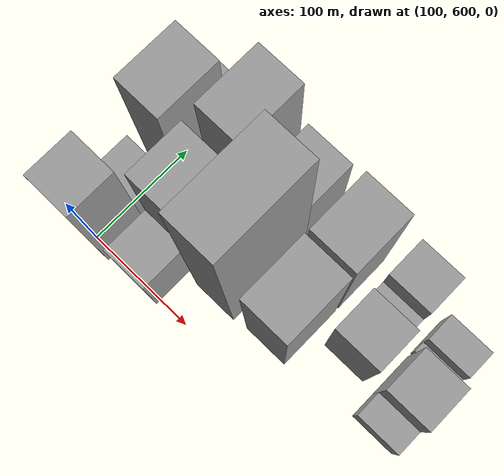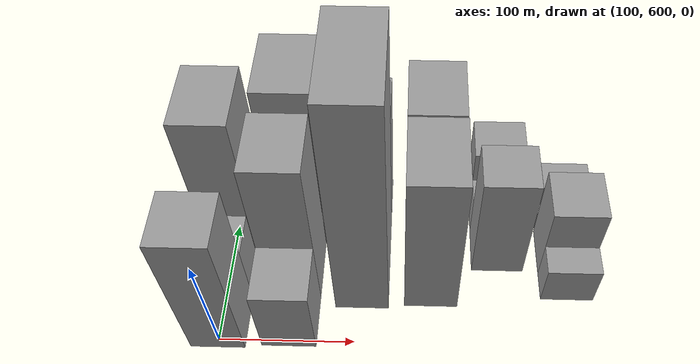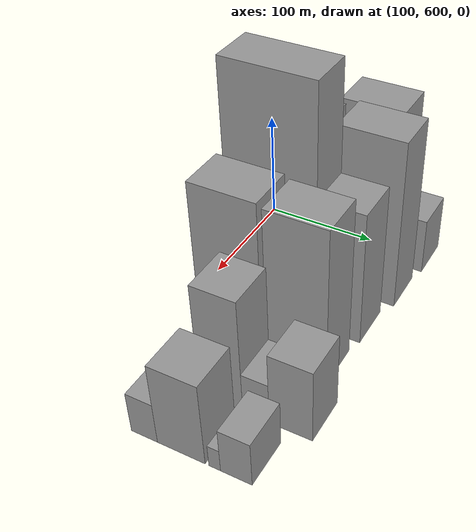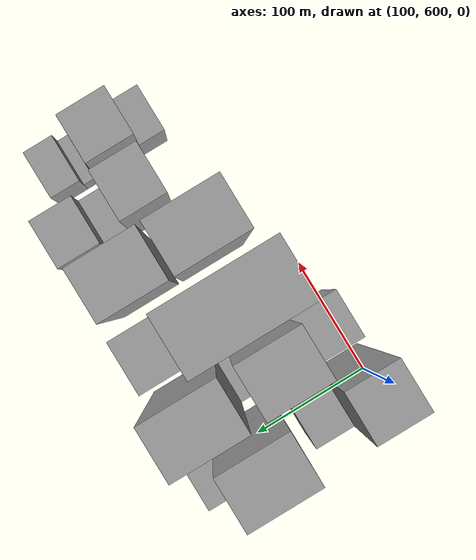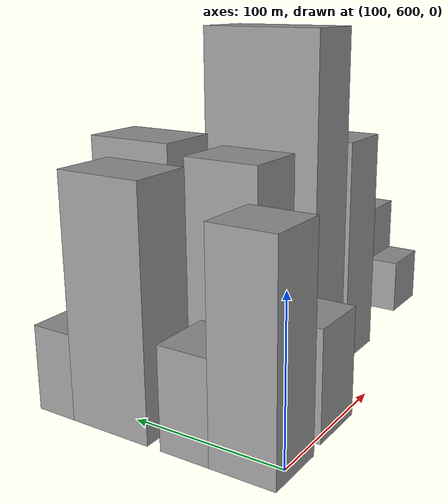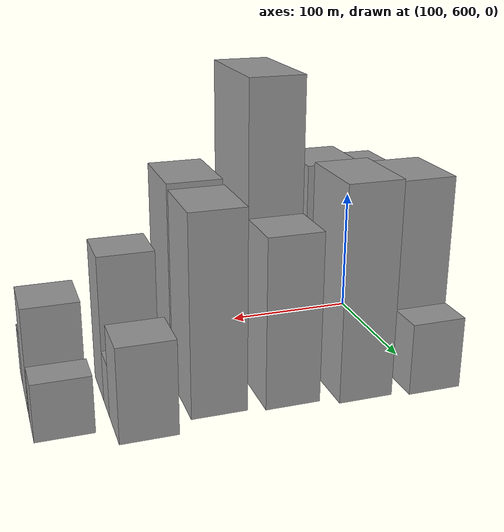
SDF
<sdf version="1.6">
 <world name="default">
  <model name="building_45">
   <static>1</static>
   <pose>100.0000 614.3200 0 0.000000 0.000000 0.000000</pose>
   <link name="link">
    <pose>0 0 67.50 0 0 0</pose>
    <collision name="collision"><geometry><box><size>40.0000 41.4108 135.0000</size></box></geometry></collision>
    <visual name="visual">
     <cast_shadows>0</cast_shadows>
     <geometry><box><size>40.0000 41.4108 135.0000</size></box></geometry>
     <material>
      <script>
       <uri>model://grey_wall/materials/scripts</uri>
       <uri>model://grey_wall/materials/textures</uri>
       <name>vrc/grey_wall</name>
      </script>
     </material>
    </visual>
   </link>
  </model>
  <model name="building_46">
   <static>1</static>
   <pose>100.0000 651.0902 0 0.000000 0.000000 0.000000</pose>
   <link name="link">
    <pose>0 0 31.50 0 0 0</pose>
    <collision name="collision"><geometry><box><size>40.0000 32.1295 63.0000</size></box></geometry></collision>
    <visual name="visual">
     <cast_shadows>0</cast_shadows>
     <geometry><box><size>40.0000 32.1295 63.0000</size></box></geometry>
     <material>
      <script>
       <uri>model://grey_wall/materials/scripts</uri>
       <uri>model://grey_wall/materials/textures</uri>
       <name>vrc/grey_wall</name>
      </script>
     </material>
    </visual>
   </link>
  </model>
  <model name="building_47">
   <static>1</static>
   <pose>100.0000 703.5954 0 0.000000 0.000000 0.000000</pose>
   <link name="link">
    <pose>0 0 75.00 0 0 0</pose>
    <collision name="collision"><geometry><box><size>40.0000 54.8809 150.0000</size></box></geometry></collision>
    <visual name="visual">
     <cast_shadows>0</cast_shadows>
     <geometry><box><size>40.0000 54.8809 150.0000</size></box></geometry>
     <material>
      <script>
       <uri>model://grey_wall/materials/scripts</uri>
       <uri>model://grey_wall/materials/textures</uri>
       <name>vrc/grey_wall</name>
      </script>
     </material>
    </visual>
   </link>
  </model>
  <model name="building_48">
   <static>1</static>
   <pose>100.0000 744.6136 0 0.000000 0.000000 0.000000</pose>
   <link name="link">
    <pose>0 0 27.00 0 0 0</pose>
    <collision name="collision"><geometry><box><size>40.0000 27.1555 54.0000</size></box></geometry></collision>
    <visual name="visual">
     <cast_shadows>0</cast_shadows>
     <geometry><box><size>40.0000 27.1555 54.0000</size></box></geometry>
     <material>
      <script>
       <uri>model://grey_wall/materials/scripts</uri>
       <uri>model://grey_wall/materials/textures</uri>
       <name>vrc/grey_wall</name>
      </script>
     </material>
    </visual>
   </link>
  </model>
  <model name="building_98">
   <static>1</static>
   <pose>152.0000 616.2266 0 0.000000 0.000000 0.000000</pose>
   <link name="link">
    <pose>0 0 34.50 0 0 0</pose>
    <collision name="collision"><geometry><box><size>40.0000 40.9809 69.0000</size></box></geometry></collision>
    <visual name="visual">
     <cast_shadows>0</cast_shadows>
     <geometry><box><size>40.0000 40.9809 69.0000</size></box></geometry>
     <material>
      <script>
       <uri>model://grey_wall/materials/scripts</uri>
       <uri>model://grey_wall/materials/textures</uri>
       <name>vrc/grey_wall</name>
      </script>
     </material>
    </visual>
   </link>
  </model>
  <model name="building_99">
   <static>1</static>
   <pose>152.0000 661.1758 0 0.000000 0.000000 0.000000</pose>
   <link name="link">
    <pose>0 0 76.50 0 0 0</pose>
    <collision name="collision"><geometry><box><size>40.0000 48.9176 153.0000</size></box></geometry></collision>
    <visual name="visual">
     <cast_shadows>0</cast_shadows>
     <geometry><box><size>40.0000 48.9176 153.0000</size></box></geometry>
     <material>
      <script>
       <uri>model://grey_wall/materials/scripts</uri>
       <uri>model://grey_wall/materials/textures</uri>
       <name>vrc/grey_wall</name>
      </script>
     </material>
    </visual>
   </link>
  </model>
  <model name="building_100">
   <static>1</static>
   <pose>152.0000 691.3845 0 0.000000 0.000000 0.000000</pose>
   <link name="link">
    <pose>0 0 13.50 0 0 0</pose>
    <collision name="collision"><geometry><box><size>40.0000 11.4999 27.0000</size></box></geometry></collision>
    <visual name="visual">
     <cast_shadows>0</cast_shadows>
     <geometry><box><size>40.0000 11.4999 27.0000</size></box></geometry>
     <material>
      <script>
       <uri>model://grey_wall/materials/scripts</uri>
       <uri>model://grey_wall/materials/textures</uri>
       <name>vrc/grey_wall</name>
      </script>
     </material>
    </visual>
   </link>
  </model>
  <model name="building_101">
   <static>1</static>
   <pose>152.0000 725.6495 0 0.000000 0.000000 0.000000</pose>
   <link name="link">
    <pose>0 0 79.50 0 0 0</pose>
    <collision name="collision"><geometry><box><size>40.0000 57.0301 159.0000</size></box></geometry></collision>
    <visual name="visual">
     <cast_shadows>0</cast_shadows>
     <geometry><box><size>40.0000 57.0301 159.0000</size></box></geometry>
     <material>
      <script>
       <uri>model://grey_wall/materials/scripts</uri>
       <uri>model://grey_wall/materials/textures</uri>
       <name>vrc/grey_wall</name>
      </script>
     </material>
    </visual>
   </link>
  </model>
  <model name="building_152">
   <static>1</static>
   <pose>204.0000 667.9828 0 0.000000 0.000000 0.000000</pose>
   <link name="link">
    <pose>0 0 111.00 0 0 0</pose>
    <collision name="collision"><geometry><box><size>40.0000 79.0117 222.0000</size></box></geometry></collision>
    <visual name="visual">
     <cast_shadows>0</cast_shadows>
     <geometry><box><size>40.0000 79.0117 222.0000</size></box></geometry>
     <material>
      <script>
       <uri>model://grey_wall/materials/scripts</uri>
       <uri>model://grey_wall/materials/textures</uri>
       <name>vrc/grey_wall</name>
      </script>
     </material>
    </visual>
   </link>
  </model>
  <model name="building_153">
   <static>1</static>
   <pose>204.0000 727.2190 0 0.000000 0.000000 0.000000</pose>
   <link name="link">
    <pose>0 0 63.00 0 0 0</pose>
    <collision name="collision"><geometry><box><size>40.0000 39.4608 126.0000</size></box></geometry></collision>
    <visual name="visual">
     <cast_shadows>0</cast_shadows>
     <geometry><box><size>40.0000 39.4608 126.0000</size></box></geometry>
     <material>
      <script>
       <uri>model://grey_wall/materials/scripts</uri>
       <uri>model://grey_wall/materials/textures</uri>
       <name>vrc/grey_wall</name>
      </script>
     </material>
    </visual>
   </link>
  </model>
  <model name="building_203">
   <static>1</static>
   <pose>256.0000 659.4033 0 0.000000 0.000000 0.000000</pose>
   <link name="link">
    <pose>0 0 75.00 0 0 0</pose>
    <collision name="collision"><geometry><box><size>40.0000 56.5505 150.0000</size></box></geometry></collision>
    <visual name="visual">
     <cast_shadows>0</cast_shadows>
     <geometry><box><size>40.0000 56.5505 150.0000</size></box></geometry>
     <material>
      <script>
       <uri>model://grey_wall/materials/scripts</uri>
       <uri>model://grey_wall/materials/textures</uri>
       <name>vrc/grey_wall</name>
      </script>
     </material>
    </visual>
   </link>
  </model>
  <model name="building_204">
   <static>1</static>
   <pose>256.0000 717.4096 0 0.000000 0.000000 0.000000</pose>
   <link name="link">
    <pose>0 0 73.50 0 0 0</pose>
    <collision name="collision"><geometry><box><size>40.0000 51.4620 147.0000</size></box></geometry></collision>
    <visual name="visual">
     <cast_shadows>0</cast_shadows>
     <geometry><box><size>40.0000 51.4620 147.0000</size></box></geometry>
     <material>
      <script>
       <uri>model://grey_wall/materials/scripts</uri>
       <uri>model://grey_wall/materials/textures</uri>
       <name>vrc/grey_wall</name>
      </script>
     </material>
    </visual>
   </link>
  </model>
  <model name="building_253">
   <static>1</static>
   <pose>308.0000 682.1928 0 0.000000 0.000000 0.000000</pose>
   <link name="link">
    <pose>0 0 54.00 0 0 0</pose>
    <collision name="collision"><geometry><box><size>40.0000 37.2078 108.0000</size></box></geometry></collision>
    <visual name="visual">
     <cast_shadows>0</cast_shadows>
     <geometry><box><size>40.0000 37.2078 108.0000</size></box></geometry>
     <material>
      <script>
       <uri>model://grey_wall/materials/scripts</uri>
       <uri>model://grey_wall/materials/textures</uri>
       <name>vrc/grey_wall</name>
      </script>
     </material>
    </visual>
   </link>
  </model>
  <model name="building_254">
   <static>1</static>
   <pose>308.0000 711.8739 0 0.000000 0.000000 0.000000</pose>
   <link name="link">
    <pose>0 0 19.50 0 0 0</pose>
    <collision name="collision"><geometry><box><size>40.0000 22.1544 39.0000</size></box></geometry></collision>
    <visual name="visual">
     <cast_shadows>0</cast_shadows>
     <geometry><box><size>40.0000 22.1544 39.0000</size></box></geometry>
     <material>
      <script>
       <uri>model://grey_wall/materials/scripts</uri>
       <uri>model://grey_wall/materials/textures</uri>
       <name>vrc/grey_wall</name>
      </script>
     </material>
    </visual>
   </link>
  </model>
  <model name="building_255">
   <static>1</static>
   <pose>308.0000 740.5995 0 0.000000 0.000000 0.000000</pose>
   <link name="link">
    <pose>0 0 34.50 0 0 0</pose>
    <collision name="collision"><geometry><box><size>40.0000 35.2968 69.0000</size></box></geometry></collision>
    <visual name="visual">
     <cast_shadows>0</cast_shadows>
     <geometry><box><size>40.0000 35.2968 69.0000</size></box></geometry>
     <material>
      <script>
       <uri>model://grey_wall/materials/scripts</uri>
       <uri>model://grey_wall/materials/textures</uri>
       <name>vrc/grey_wall</name>
      </script>
     </material>
    </visual>
   </link>
  </model>
  <model name="building_306">
   <static>1</static>
   <pose>360.0000 650.4732 0 0.000000 0.000000 0.000000</pose>
   <link name="link">
    <pose>0 0 19.50 0 0 0</pose>
    <collision name="collision"><geometry><box><size>40.0000 22.5471 39.0000</size></box></geometry></collision>
    <visual name="visual">
     <cast_shadows>0</cast_shadows>
     <geometry><box><size>40.0000 22.5471 39.0000</size></box></geometry>
     <material>
      <script>
       <uri>model://grey_wall/materials/scripts</uri>
       <uri>model://grey_wall/materials/textures</uri>
       <name>vrc/grey_wall</name>
      </script>
     </material>
    </visual>
   </link>
  </model>
  <model name="building_307">
   <static>1</static>
   <pose>360.0000 681.6998 0 0.000000 0.000000 0.000000</pose>
   <link name="link">
    <pose>0 0 39.00 0 0 0</pose>
    <collision name="collision"><geometry><box><size>40.0000 39.9060 78.0000</size></box></geometry></collision>
    <visual name="visual">
     <cast_shadows>0</cast_shadows>
     <geometry><box><size>40.0000 39.9060 78.0000</size></box></geometry>
     <material>
      <script>
       <uri>model://grey_wall/materials/scripts</uri>
       <uri>model://grey_wall/materials/textures</uri>
       <name>vrc/grey_wall</name>
      </script>
     </material>
    </visual>
   </link>
  </model>
  <model name="building_308">
   <static>1</static>
   <pose>360.0000 709.3783 0 0.000000 0.000000 0.000000</pose>
   <link name="link">
    <pose>0 0 10.50 0 0 0</pose>
    <collision name="collision"><geometry><box><size>40.0000 9.4511 21.0000</size></box></geometry></collision>
    <visual name="visual">
     <cast_shadows>0</cast_shadows>
     <geometry><box><size>40.0000 9.4511 21.0000</size></box></geometry>
     <material>
      <script>
       <uri>model://grey_wall/materials/scripts</uri>
       <uri>model://grey_wall/materials/textures</uri>
       <name>vrc/grey_wall</name>
      </script>
     </material>
    </visual>
   </link>
  </model>
  <model name="building_309">
   <static>1</static>
   <pose>360.0000 726.6614 0 0.000000 0.000000 0.000000</pose>
   <link name="link">
    <pose>0 0 21.00 0 0 0</pose>
    <collision name="collision"><geometry><box><size>40.0000 25.1151 42.0000</size></box></geometry></collision>
    <visual name="visual">
     <cast_shadows>0</cast_shadows>
     <geometry><box><size>40.0000 25.1151 42.0000</size></box></geometry>
     <material>
      <script>
       <uri>model://grey_wall/materials/scripts</uri>
       <uri>model://grey_wall/materials/textures</uri>
       <name>vrc/grey_wall</name>
      </script>
     </material>
    </visual>
   </link>
  </model>
 </world>
</sdf>
